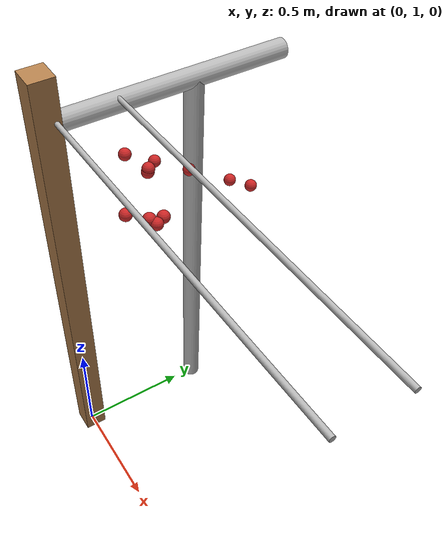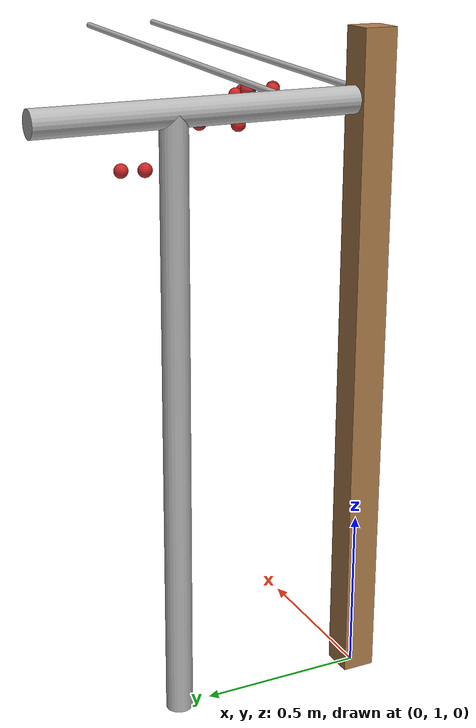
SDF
<sdf version="1.4">
 <model name="pergola">
  <include><name>post_1</name><pose>0.0 1.0 0 0 0 0</pose><uri>model://post</uri></include>
  <include><name>tree_1</name><pose>0.0 1.6 0 0 0 0</pose><uri>model://tree_trunk</uri></include>
  <link name="baseBranch_1">
   <pose>0.0 1.5 1.8 1.5707963267948966 0 0</pose>
   <collision name="collision">
    <geometry><cylinder><radius>0.04</radius><length>1.0</length></cylinder></geometry>
   </collision>
   <visual name="visual">
    <geometry><cylinder><radius>0.04</radius><length>1.0</length></cylinder></geometry>
    <material>
     <script>
      <uri>model://tree_trunk/materials/scripts</uri>
      <uri>model://tree_trunk/materials/textures</uri>
      <name>Tree/Bark</name>
     </script>
    </material>
   </visual>
   <inertial>
    <mass>10</mass>
    <inertia>
     <ixx>0.8373333333333332</ixx>
     <ixy>0.0</ixy>
     <ixz>0.0</ixz>
     <iyy>0.8373333333333332</iyy>
     <iyz>0.0</iyz>
     <izz>0.008</izz>
    </inertia>
   </inertial>
  </link>
  <link name="vine_8">
   <pose>0.75 1.03 1.85 0 1.5374753309166493 0</pose>
   <collision name="collision">
    <geometry><cylinder><radius>0.01</radius><length>1.5008331019803633</length></cylinder></geometry>
   </collision>
   <visual name="visual">
    <geometry><cylinder><radius>0.01</radius><length>1.5008331019803633</length></cylinder></geometry>
    <material>
     <script>
      <uri>model://tree_trunk/materials/scripts</uri>
      <uri>model://tree_trunk/materials/textures</uri>
      <name>Tree/Bark</name>
     </script>
    </material>
   </visual>
   <inertial>
    <mass>5</mass>
    <inertia>
     <ixx>0.9386666666666668</ixx>
     <ixy>0.0</ixy>
     <ixz>0.0</ixz>
     <iyy>0.9386666666666668</iyy>
     <iyz>0.0</iyz>
     <izz>0.00025</izz>
    </inertia>
   </inertial>
  </link>
  <link name="vine_10">
   <pose>0.75 1.28 1.85 0 1.5374753309166493 0</pose>
   <collision name="collision">
    <geometry><cylinder><radius>0.01</radius><length>1.5008331019803633</length></cylinder></geometry>
   </collision>
   <visual name="visual">
    <geometry><cylinder><radius>0.01</radius><length>1.5008331019803633</length></cylinder></geometry>
    <material>
     <script>
      <uri>model://tree_trunk/materials/scripts</uri>
      <uri>model://tree_trunk/materials/textures</uri>
      <name>Tree/Bark</name>
     </script>
    </material>
   </visual>
   <inertial>
    <mass>5</mass>
    <inertia>
     <ixx>0.9386666666666668</ixx>
     <ixy>0.0</ixy>
     <ixz>0.0</ixz>
     <iyy>0.9386666666666668</iyy>
     <iyz>0.0</iyz>
     <izz>0.00025</izz>
    </inertia>
   </inertial>
  </link>
  <link name="fruit_22">
   <pose>0.506406992182375 1.042596525793185 1.7639970183331384 0 0 0</pose>
   <collision name="fruit_collision_22"><geometry><sphere><radius>0.022</radius></sphere></geometry></collision>
   <visual name="visual">
    <geometry><sphere><radius>0.022</radius></sphere></geometry>
    <material><script><name>Gazebo/Red</name></script></material>
   </visual>
   <inertial>
    <mass>0.05</mass>
    <inertia>
     <ixx>9.679999999999999e-06</ixx>
     <ixy>0.0</ixy>
     <ixz>0.0</ixz>
     <iyy>9.679999999999999e-06</iyy>
     <iyz>0.0</iyz>
     <izz>9.679999999999999e-06</izz>
    </inertia>
   </inertial>
   <sensor name="fruit_contact_22" type="contact">
    <plugin name="contact_plugin_22" filename="libcontact_plugin.so"/>
    <contact><collision>fruit_collision_22</collision><topic>fruit_contact_topic_22</topic></contact>
   </sensor>
  </link>
  <link name="fruit_58">
   <pose>0.3436221165433374 1.542878230359321 1.5785327310066295 0 0 0</pose>
   <collision name="fruit_collision_58"><geometry><sphere><radius>0.022</radius></sphere></geometry></collision>
   <visual name="visual">
    <geometry><sphere><radius>0.022</radius></sphere></geometry>
    <material><script><name>Gazebo/Red</name></script></material>
   </visual>
   <inertial>
    <mass>0.05</mass>
    <inertia>
     <ixx>9.679999999999999e-06</ixx>
     <ixy>0.0</ixy>
     <ixz>0.0</ixz>
     <iyy>9.679999999999999e-06</iyy>
     <iyz>0.0</iyz>
     <izz>9.679999999999999e-06</izz>
    </inertia>
   </inertial>
   <sensor name="fruit_contact_58" type="contact">
    <plugin name="contact_plugin_58" filename="libcontact_plugin.so"/>
    <contact><collision>fruit_collision_58</collision><topic>fruit_contact_topic_58</topic></contact>
   </sensor>
  </link>
  <link name="fruit_95">
   <pose>0.2769981000445493 1.163846356687435 1.7963842551937845 0 0 0</pose>
   <collision name="fruit_collision_95"><geometry><sphere><radius>0.022</radius></sphere></geometry></collision>
   <visual name="visual">
    <geometry><sphere><radius>0.022</radius></sphere></geometry>
    <material><script><name>Gazebo/Red</name></script></material>
   </visual>
   <inertial>
    <mass>0.05</mass>
    <inertia>
     <ixx>9.679999999999999e-06</ixx>
     <ixy>0.0</ixy>
     <ixz>0.0</ixz>
     <iyy>9.679999999999999e-06</iyy>
     <iyz>0.0</iyz>
     <izz>9.679999999999999e-06</izz>
    </inertia>
   </inertial>
   <sensor name="fruit_contact_95" type="contact">
    <plugin name="contact_plugin_95" filename="libcontact_plugin.so"/>
    <contact><collision>fruit_collision_95</collision><topic>fruit_contact_topic_95</topic></contact>
   </sensor>
  </link>
  <link name="fruit_144">
   <pose>0.2563622812087246 1.2843137523186212 1.7076626679326343 0 0 0</pose>
   <collision name="fruit_collision_144"><geometry><sphere><radius>0.022</radius></sphere></geometry></collision>
   <visual name="visual">
    <geometry><sphere><radius>0.022</radius></sphere></geometry>
    <material><script><name>Gazebo/Red</name></script></material>
   </visual>
   <inertial>
    <mass>0.05</mass>
    <inertia>
     <ixx>9.679999999999999e-06</ixx>
     <ixy>0.0</ixy>
     <ixz>0.0</ixz>
     <iyy>9.679999999999999e-06</iyy>
     <iyz>0.0</iyz>
     <izz>9.679999999999999e-06</izz>
    </inertia>
   </inertial>
   <sensor name="fruit_contact_144" type="contact">
    <plugin name="contact_plugin_144" filename="libcontact_plugin.so"/>
    <contact><collision>fruit_collision_144</collision><topic>fruit_contact_topic_144</topic></contact>
   </sensor>
  </link>
  <link name="fruit_184">
   <pose>0.3732459302250274 1.195415900601752 1.776501458888483 0 0 0</pose>
   <collision name="fruit_collision_184"><geometry><sphere><radius>0.022</radius></sphere></geometry></collision>
   <visual name="visual">
    <geometry><sphere><radius>0.022</radius></sphere></geometry>
    <material><script><name>Gazebo/Red</name></script></material>
   </visual>
   <inertial>
    <mass>0.05</mass>
    <inertia>
     <ixx>9.679999999999999e-06</ixx>
     <ixy>0.0</ixy>
     <ixz>0.0</ixz>
     <iyy>9.679999999999999e-06</iyy>
     <iyz>0.0</iyz>
     <izz>9.679999999999999e-06</izz>
    </inertia>
   </inertial>
   <sensor name="fruit_contact_184" type="contact">
    <plugin name="contact_plugin_184" filename="libcontact_plugin.so"/>
    <contact><collision>fruit_collision_184</collision><topic>fruit_contact_topic_184</topic></contact>
   </sensor>
  </link>
  <link name="fruit_253">
   <pose>0.5786769020021985 1.1111969946167688 1.7503834883599219 0 0 0</pose>
   <collision name="fruit_collision_253"><geometry><sphere><radius>0.022</radius></sphere></geometry></collision>
   <visual name="visual">
    <geometry><sphere><radius>0.022</radius></sphere></geometry>
    <material><script><name>Gazebo/Red</name></script></material>
   </visual>
   <inertial>
    <mass>0.05</mass>
    <inertia>
     <ixx>9.679999999999999e-06</ixx>
     <ixy>0.0</ixy>
     <ixz>0.0</ixz>
     <iyy>9.679999999999999e-06</iyy>
     <iyz>0.0</iyz>
     <izz>9.679999999999999e-06</izz>
    </inertia>
   </inertial>
   <sensor name="fruit_contact_253" type="contact">
    <plugin name="contact_plugin_253" filename="libcontact_plugin.so"/>
    <contact><collision>fruit_collision_253</collision><topic>fruit_contact_topic_253</topic></contact>
   </sensor>
  </link>
  <link name="fruit_283">
   <pose>0.5540768091935786 1.1490965704329585 1.743383880791971 0 0 0</pose>
   <collision name="fruit_collision_283"><geometry><sphere><radius>0.022</radius></sphere></geometry></collision>
   <visual name="visual">
    <geometry><sphere><radius>0.022</radius></sphere></geometry>
    <material><script><name>Gazebo/Red</name></script></material>
   </visual>
   <inertial>
    <mass>0.05</mass>
    <inertia>
     <ixx>9.679999999999999e-06</ixx>
     <ixy>0.0</ixy>
     <ixz>0.0</ixz>
     <iyy>9.679999999999999e-06</iyy>
     <iyz>0.0</iyz>
     <izz>9.679999999999999e-06</izz>
    </inertia>
   </inertial>
   <sensor name="fruit_contact_283" type="contact">
    <plugin name="contact_plugin_283" filename="libcontact_plugin.so"/>
    <contact><collision>fruit_collision_283</collision><topic>fruit_contact_topic_283</topic></contact>
   </sensor>
  </link>
  <link name="fruit_304">
   <pose>0.37252049301457196 1.1985450219161387 1.788066147383367 0 0 0</pose>
   <collision name="fruit_collision_304"><geometry><sphere><radius>0.022</radius></sphere></geometry></collision>
   <visual name="visual">
    <geometry><sphere><radius>0.022</radius></sphere></geometry>
    <material><script><name>Gazebo/Red</name></script></material>
   </visual>
   <inertial>
    <mass>0.05</mass>
    <inertia>
     <ixx>9.679999999999999e-06</ixx>
     <ixy>0.0</ixy>
     <ixz>0.0</ixz>
     <iyy>9.679999999999999e-06</iyy>
     <iyz>0.0</iyz>
     <izz>9.679999999999999e-06</izz>
    </inertia>
   </inertial>
   <sensor name="fruit_contact_304" type="contact">
    <plugin name="contact_plugin_304" filename="libcontact_plugin.so"/>
    <contact><collision>fruit_collision_304</collision><topic>fruit_contact_topic_304</topic></contact>
   </sensor>
  </link>
  <link name="fruit_330">
   <pose>0.5579719067028289 1.0968717170188222 1.7605206271474476 0 0 0</pose>
   <collision name="fruit_collision_330"><geometry><sphere><radius>0.022</radius></sphere></geometry></collision>
   <visual name="visual">
    <geometry><sphere><radius>0.022</radius></sphere></geometry>
    <material><script><name>Gazebo/Red</name></script></material>
   </visual>
   <inertial>
    <mass>0.05</mass>
    <inertia>
     <ixx>9.679999999999999e-06</ixx>
     <ixy>0.0</ixy>
     <ixz>0.0</ixz>
     <iyy>9.679999999999999e-06</iyy>
     <iyz>0.0</iyz>
     <izz>9.679999999999999e-06</izz>
    </inertia>
   </inertial>
   <sensor name="fruit_contact_330" type="contact">
    <plugin name="contact_plugin_330" filename="libcontact_plugin.so"/>
    <contact><collision>fruit_collision_330</collision><topic>fruit_contact_topic_330</topic></contact>
   </sensor>
  </link>
  <link name="fruit_358">
   <pose>0.40061606426785296 1.595997300535268 1.5700471776246288 0 0 0</pose>
   <collision name="fruit_collision_358"><geometry><sphere><radius>0.022</radius></sphere></geometry></collision>
   <visual name="visual">
    <geometry><sphere><radius>0.022</radius></sphere></geometry>
    <material><script><name>Gazebo/Red</name></script></material>
   </visual>
   <inertial>
    <mass>0.05</mass>
    <inertia>
     <ixx>9.679999999999999e-06</ixx>
     <ixy>0.0</ixy>
     <ixz>0.0</ixz>
     <iyy>9.679999999999999e-06</iyy>
     <iyz>0.0</iyz>
     <izz>9.679999999999999e-06</izz>
    </inertia>
   </inertial>
   <sensor name="fruit_contact_358" type="contact">
    <plugin name="contact_plugin_358" filename="libcontact_plugin.so"/>
    <contact><collision>fruit_collision_358</collision><topic>fruit_contact_topic_358</topic></contact>
   </sensor>
  </link>
  <link name="fruit_458">
   <pose>0.35108507654659793 1.3656479098634495 1.7021196097526652 0 0 0</pose>
   <collision name="fruit_collision_458"><geometry><sphere><radius>0.022</radius></sphere></geometry></collision>
   <visual name="visual">
    <geometry><sphere><radius>0.022</radius></sphere></geometry>
    <material><script><name>Gazebo/Red</name></script></material>
   </visual>
   <inertial>
    <mass>0.05</mass>
    <inertia>
     <ixx>9.679999999999999e-06</ixx>
     <ixy>0.0</ixy>
     <ixz>0.0</ixz>
     <iyy>9.679999999999999e-06</iyy>
     <iyz>0.0</iyz>
     <izz>9.679999999999999e-06</izz>
    </inertia>
   </inertial>
   <sensor name="fruit_contact_458" type="contact">
    <plugin name="contact_plugin_458" filename="libcontact_plugin.so"/>
    <contact><collision>fruit_collision_458</collision><topic>fruit_contact_topic_458</topic></contact>
   </sensor>
  </link>
 </model>
</sdf>
